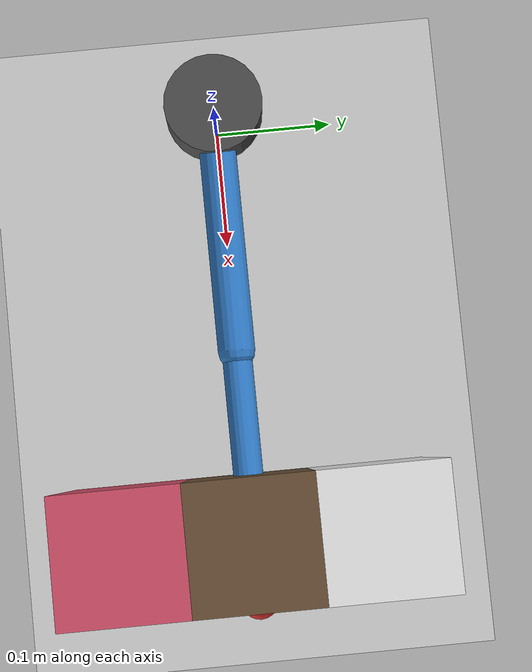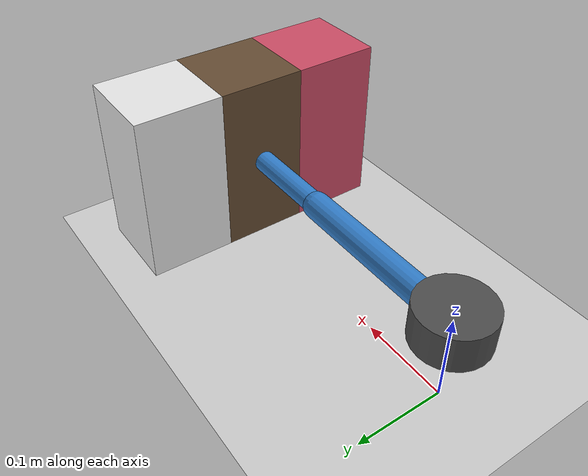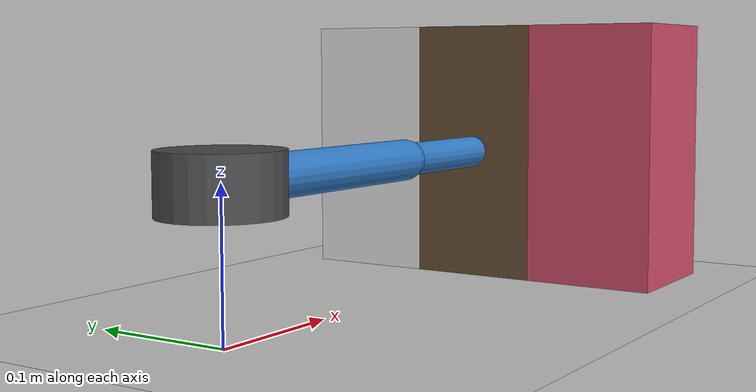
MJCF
<mujoco model="2dof_multimodal_tactile_device">
    <compiler angle="degree" coordinate="local" inertiafromgeom="true"/>
    <option gravity="0 0 -9.81" timestep="0.001"/> <!-- 1kHz real-time loop -->

    <asset>
        <texture name="grid" type="2d" builtin="checker" width="512" height="512"
                 rgb1="0.9 0.9 0.9" rgb2="0.7 0.7 0.7"/>
        <material name="grid_mat" texture="grid" texrepeat="5 5" reflectance="0.1"/>
        <material name="link_mat" rgba="0.2 0.5 0.8 1"/>
        <material name="effector_mat" rgba="0.9 0.2 0.2 1"/>

        <!-- Surface Material Definitions -->
        <material name="enamel_mat" rgba="0.9 0.9 0.9 1"/> <!-- Smooth Enamel -->
        <material name="decay_mat" rgba="0.4 0.3 0.2 1"/>  <!-- Rough Decay -->
        <material name="tissue_mat" rgba="0.8 0.3 0.4 1"/> <!-- Soft/Sticky Tissue -->
    </asset>

    <worldbody>
        <geom name="floor" type="plane" size="1 1 0.1" material="grid_mat"/>

        <!-- Multi-Texture Surface Array (X_boundary = 0.25m) -->
        <!-- Material 1: Smooth Enamel -->
        <body name="surface_enamel" pos="0.35 0.10 0.1">
            <geom name="geom_enamel" type="box" size="0.05 0.05 0.1" material="enamel_mat"
                  friction="0.1 0.005 0.0001"/>
        </body>

        <!-- Material 2: Rough Cavity Decay -->
        <body name="surface_decay" pos="0.35 0.0 0.1">
            <geom name="geom_decay" type="box" size="0.05 0.05 0.1" material="decay_mat"
                  contype="1" conaffinity="1" friction="0.7 0.005 0.0001"/>
        </body>

        <!-- Material 3: Soft/Sticky Tissue -->
        <body name="surface_tissue" pos="0.35 -0.10 0.1">
            <geom name="geom_tissue" type="box" size="0.05 0.05 0.1" material="tissue_mat"
                  friction="0.9 0.005 0.0001"/>
        </body>

        <!-- Base of the Haptic Stylus -->
        <body name="base" pos="0 0 0.1">
            <geom type="cylinder" size="0.04 0.02" rgba="0.3 0.3 0.3 1"/>

            <body name="link1" pos="0 0 0">
                <joint name="joint1" type="hinge" axis="0 0 1" range="-120 120" damping="0.05"/>
                <geom type="capsule" fromto="0 0 0  0.2 0 0" size="0.015" material="link_mat"/>

                <body name="link2" pos="0.2 0 0">
                    <joint name="joint2" type="hinge" axis="0 0 1" range="-150 150" damping="0.05"/>
                    <geom type="capsule" fromto="0 0 0  0.2 0 0" size="0.012" material="link_mat"/>

                    <body name="end_effector" pos="0.2 0 0">
                        <geom name="stylus_tip" type="sphere" size="0.015" material="effector_mat"
                              contype="1" conaffinity="1" friction="0.5 0.005 0.0001"/>
                        <site name="tip_site" pos="0 0 0" size="0.005" rgba="1 1 0 1"/>
                    </body>
                </body>
            </body>
        </body>
    </worldbody>

    <actuator>
        <motor name="torque_j1" joint="joint1" gear="1" ctrllimited="true" ctrlrange="-8.0 8.0"/>
        <motor name="torque_j2" joint="joint2" gear="1" ctrllimited="true" ctrlrange="-8.0 8.0"/>
    </actuator>

    <sensor>
        <jointpos name="j1_pos" joint="joint1"/>
        <jointvel name="j1_vel" joint="joint1"/>
        <jointpos name="j2_pos" joint="joint2"/>
        <jointvel name="j2_vel" joint="joint2"/>
        <framepos name="ee_pos" objtype="site" objname="tip_site"/>
        <framelinvel name="ee_vel" objtype="site" objname="tip_site"/>
        <touch name="tip_contact_force" site="tip_site"/>
    </sensor>
</mujoco>
